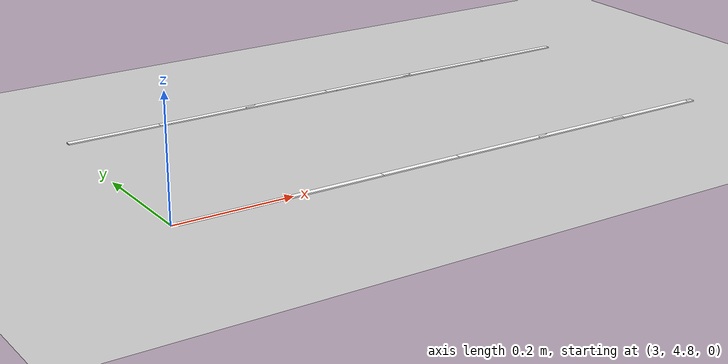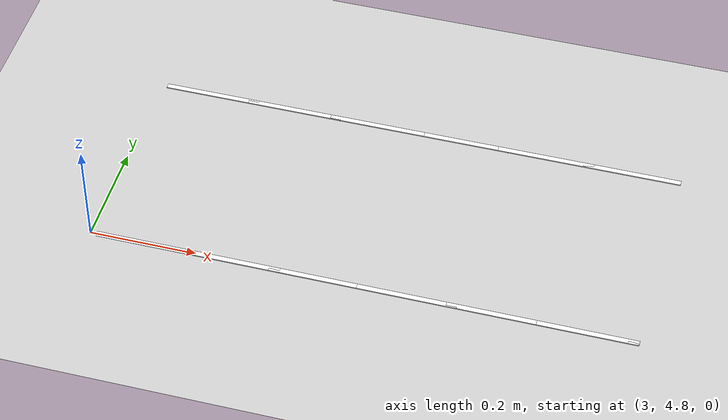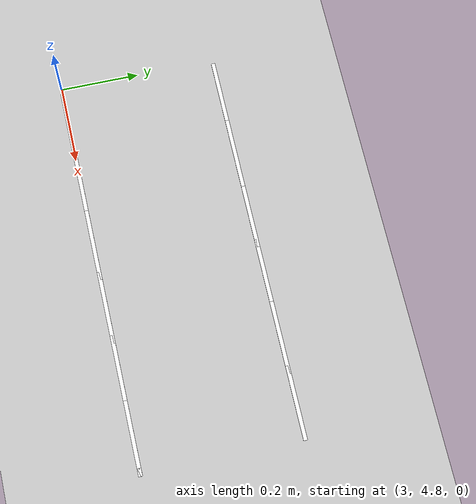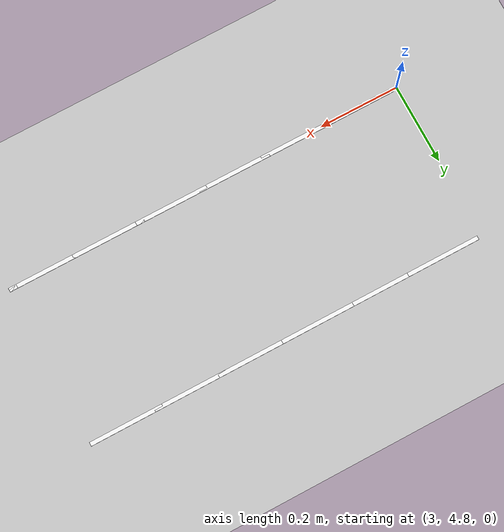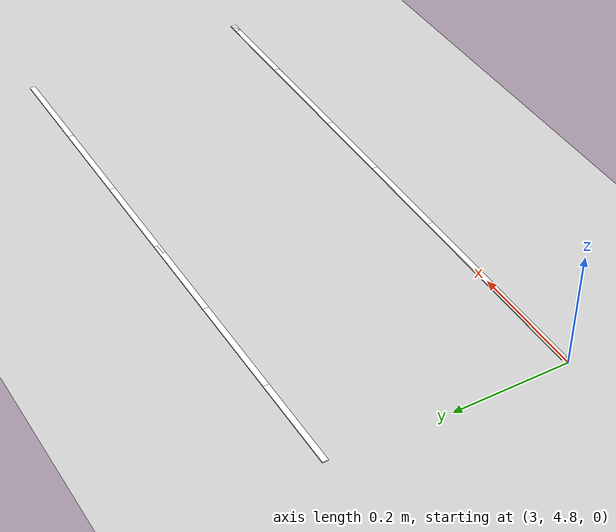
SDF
<sdf version="1.7">
 <world name="default">
  <model name="ground_plane">
   <static>1</static>
   <link name="link">
    <collision name="collision">
     <geometry><plane><normal>0 0 1</normal><size>100 100</size></plane></geometry>
     <surface>
      <contact><collide_bitmask>65535</collide_bitmask></contact>
      <friction><ode><mu>100</mu><mu2>50</mu2></ode></friction>
     </surface>
    </collision>
    <visual name="visual">
     <cast_shadows>0</cast_shadows>
     <geometry><plane><normal>0 0 1</normal><size>100 100</size></plane></geometry>
     <material>
      <script><uri>file://media/materials/scripts/gazebo.material</uri><name>Gazebo/Grey</name></script>
     </material>
    </visual>
   </link>
  </model>
  <model name="lane_line_right_199">
   <static>1</static>
   <link name="link">
    <pose>0 0 -0.004 0 -0 0</pose>
    <visual name="visual">
     <geometry><box><size>0.02 0.01 0.01</size></box></geometry>
     <material><ambient>1 1 1 1</ambient><diffuse>1 1 1 1</diffuse></material>
    </visual>
    <collision name="collision"><geometry><box><size>0.02 0.01 0.01</size></box></geometry></collision>
   </link>
   <pose>4 4.8 0 0 -0 0</pose>
  </model>
  <model name="lane_line_left_200">
   <static>1</static>
   <link name="link">
    <pose>0 0 -0.004 0 -0 0</pose>
    <visual name="visual">
     <geometry><box><size>0.1833 0.01 0.01</size></box></geometry>
     <material><ambient>1 1 1 1</ambient><diffuse>1 1 1 1</diffuse></material>
    </visual>
    <collision name="collision"><geometry><box><size>0.1833 0.01 0.01</size></box></geometry></collision>
   </link>
   <pose>3.91837 4.8 0 0 -0 3.14159</pose>
  </model>
  <model name="lane_line_right_200">
   <static>1</static>
   <link name="link">
    <pose>0 0 -0.004 0 -0 0</pose>
    <visual name="visual">
     <geometry><box><size>0.1833 0.01 0.01</size></box></geometry>
     <material><ambient>1 1 1 1</ambient><diffuse>1 1 1 1</diffuse></material>
    </visual>
    <collision name="collision"><geometry><box><size>0.1833 0.01 0.01</size></box></geometry></collision>
   </link>
   <pose>3.91837 5.2 0 0 -0 3.14159</pose>
  </model>
  <model name="lane_line_left_201">
   <static>1</static>
   <link name="link">
    <pose>0 0 -0.004 0 -0 0</pose>
    <visual name="visual">
     <geometry><box><size>0.1833 0.01 0.01</size></box></geometry>
     <material><ambient>1 1 1 1</ambient><diffuse>1 1 1 1</diffuse></material>
    </visual>
    <collision name="collision"><geometry><box><size>0.1833 0.01 0.01</size></box></geometry></collision>
   </link>
   <pose>3.7551 4.8 0 0 -0 3.14159</pose>
  </model>
  <model name="lane_line_right_201">
   <static>1</static>
   <link name="link">
    <pose>0 0 -0.004 0 -0 0</pose>
    <visual name="visual">
     <geometry><box><size>0.1833 0.01 0.01</size></box></geometry>
     <material><ambient>1 1 1 1</ambient><diffuse>1 1 1 1</diffuse></material>
    </visual>
    <collision name="collision"><geometry><box><size>0.1833 0.01 0.01</size></box></geometry></collision>
   </link>
   <pose>3.7551 5.2 0 0 -0 3.14159</pose>
  </model>
  <model name="lane_line_left_202">
   <static>1</static>
   <link name="link">
    <pose>0 0 -0.004 0 -0 0</pose>
    <visual name="visual">
     <geometry><box><size>0.1833 0.01 0.01</size></box></geometry>
     <material><ambient>1 1 1 1</ambient><diffuse>1 1 1 1</diffuse></material>
    </visual>
    <collision name="collision"><geometry><box><size>0.1833 0.01 0.01</size></box></geometry></collision>
   </link>
   <pose>3.59184 4.8 0 0 -0 3.14159</pose>
  </model>
  <model name="lane_line_right_202">
   <static>1</static>
   <link name="link">
    <pose>0 0 -0.004 0 -0 0</pose>
    <visual name="visual">
     <geometry><box><size>0.1833 0.01 0.01</size></box></geometry>
     <material><ambient>1 1 1 1</ambient><diffuse>1 1 1 1</diffuse></material>
    </visual>
    <collision name="collision"><geometry><box><size>0.1833 0.01 0.01</size></box></geometry></collision>
   </link>
   <pose>3.59184 5.2 0 0 -0 3.14159</pose>
  </model>
  <model name="lane_line_left_203">
   <static>1</static>
   <link name="link">
    <pose>0 0 -0.004 0 -0 0</pose>
    <visual name="visual">
     <geometry><box><size>0.1833 0.01 0.01</size></box></geometry>
     <material><ambient>1 1 1 1</ambient><diffuse>1 1 1 1</diffuse></material>
    </visual>
    <collision name="collision"><geometry><box><size>0.1833 0.01 0.01</size></box></geometry></collision>
   </link>
   <pose>3.42857 4.8 0 0 -0 3.14159</pose>
  </model>
  <model name="lane_line_right_203">
   <static>1</static>
   <link name="link">
    <pose>0 0 -0.004 0 -0 0</pose>
    <visual name="visual">
     <geometry><box><size>0.1833 0.01 0.01</size></box></geometry>
     <material><ambient>1 1 1 1</ambient><diffuse>1 1 1 1</diffuse></material>
    </visual>
    <collision name="collision"><geometry><box><size>0.1833 0.01 0.01</size></box></geometry></collision>
   </link>
   <pose>3.42857 5.2 0 0 -0 3.14159</pose>
  </model>
  <model name="lane_line_left_204">
   <static>1</static>
   <link name="link">
    <pose>0 0 -0.004 0 -0 0</pose>
    <visual name="visual">
     <geometry><box><size>0.1833 0.01 0.01</size></box></geometry>
     <material><ambient>1 1 1 1</ambient><diffuse>1 1 1 1</diffuse></material>
    </visual>
    <collision name="collision"><geometry><box><size>0.1833 0.01 0.01</size></box></geometry></collision>
   </link>
   <pose>3.26531 4.8 0 0 -0 3.14159</pose>
  </model>
  <model name="lane_line_right_204">
   <static>1</static>
   <link name="link">
    <pose>0 0 -0.004 0 -0 0</pose>
    <visual name="visual">
     <geometry><box><size>0.1833 0.01 0.01</size></box></geometry>
     <material><ambient>1 1 1 1</ambient><diffuse>1 1 1 1</diffuse></material>
    </visual>
    <collision name="collision"><geometry><box><size>0.1833 0.01 0.01</size></box></geometry></collision>
   </link>
   <pose>3.26531 5.2 0 0 -0 3.14159</pose>
  </model>
  <model name="lane_line_left_205">
   <static>1</static>
   <link name="link">
    <pose>0 0 -0.004 0 -0 0</pose>
    <visual name="visual">
     <geometry><box><size>0.1833 0.01 0.01</size></box></geometry>
     <material><ambient>1 1 1 1</ambient><diffuse>1 1 1 1</diffuse></material>
    </visual>
    <collision name="collision"><geometry><box><size>0.1833 0.01 0.01</size></box></geometry></collision>
   </link>
   <pose>3.10204 4.8 0 0 -0 3.14159</pose>
  </model>
  <model name="lane_line_right_205">
   <static>1</static>
   <link name="link">
    <pose>0 0 -0.004 0 -0 0</pose>
    <visual name="visual">
     <geometry><box><size>0.1833 0.01 0.01</size></box></geometry>
     <material><ambient>1 1 1 1</ambient><diffuse>1 1 1 1</diffuse></material>
    </visual>
    <collision name="collision"><geometry><box><size>0.1833 0.01 0.01</size></box></geometry></collision>
   </link>
   <pose>3.10204 5.2 0 0 -0 3.14159</pose>
  </model>
 </world>
</sdf>
